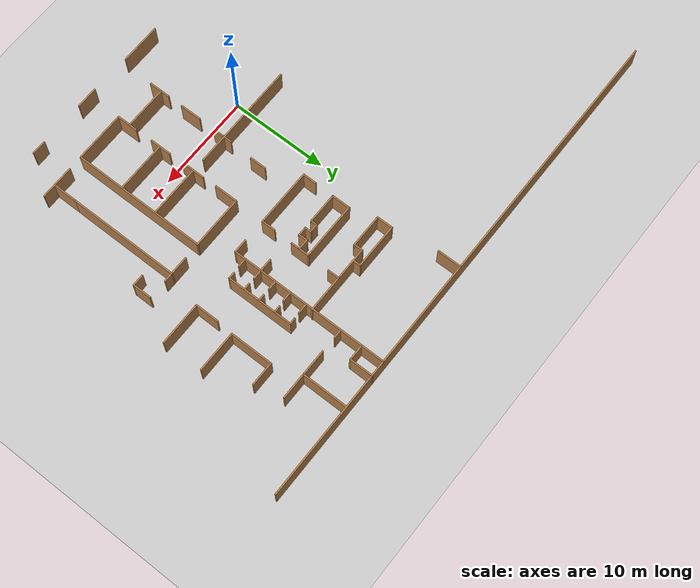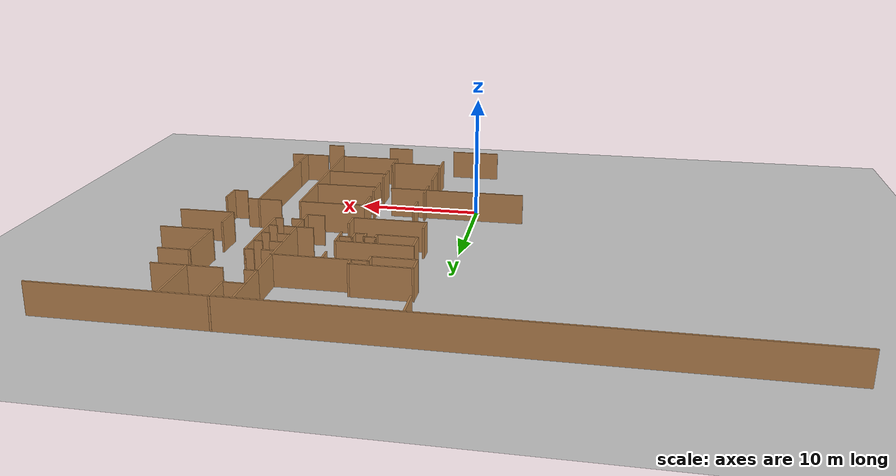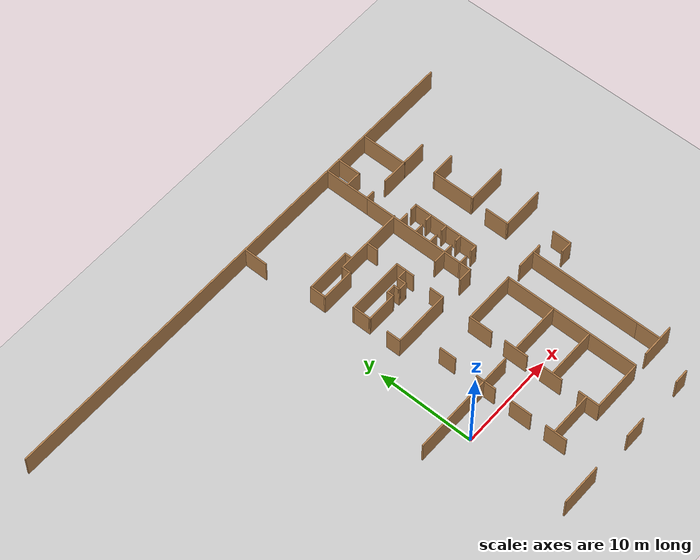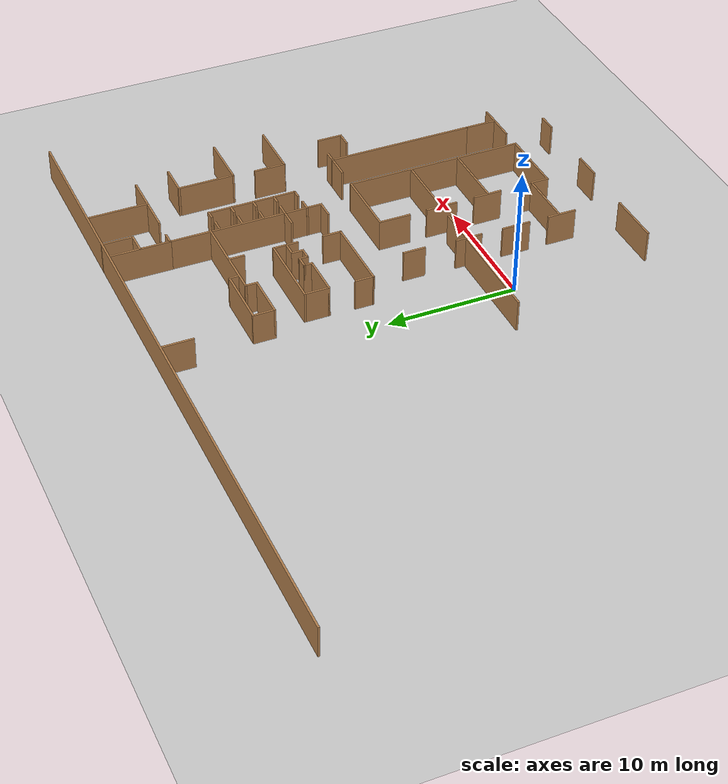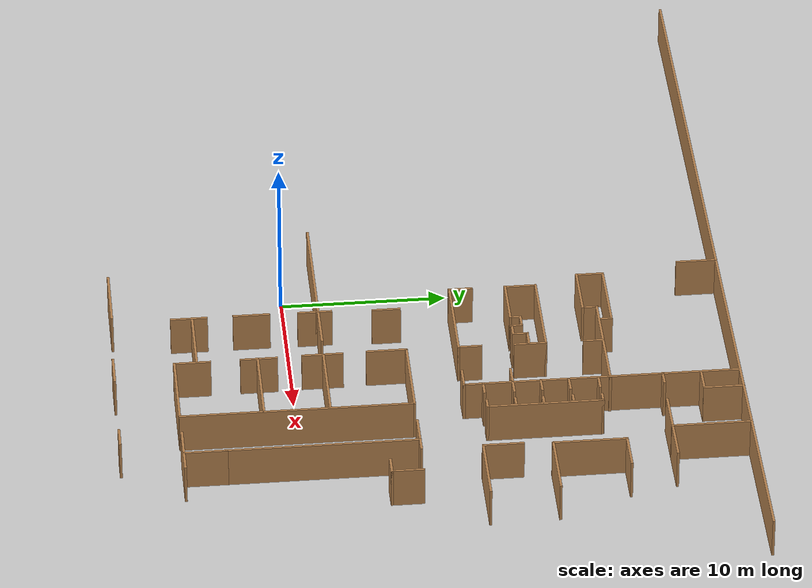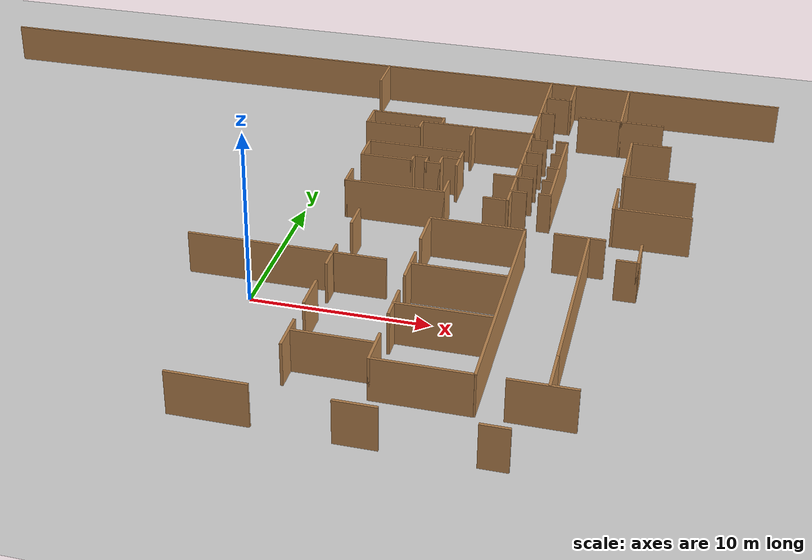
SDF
<sdf version="1.6">
 <world name="default">
  <model name="ground_plane">
   <static>1</static>
   <link name="link">
    <collision name="collision">
     <geometry><plane><normal>0 0 1</normal><size>100 100</size></plane></geometry>
     <surface><friction><ode><mu>100</mu><mu2>50</mu2></ode></friction></surface>
    </collision>
    <visual name="visual">
     <cast_shadows>0</cast_shadows>
     <geometry><plane><normal>0 0 1</normal><size>100 100</size></plane></geometry>
     <material>
      <script><uri>file://media/materials/scripts/gazebo.material</uri><name>Gazebo/Grey</name></script>
     </material>
    </visual>
   </link>
  </model>
  <model name="floor_plan">
   <link name="Wall_113">
    <collision name="Wall_113_Collision">
     <geometry><box><size>12 0.15 2.5</size></box></geometry>
     <pose>0 0 1.25 0 -0 0</pose>
    </collision>
    <visual name="Wall_113_Visual">
     <pose>0 0 1.25 0 -0 0</pose>
     <geometry><box><size>12 0.15 2.5</size></box></geometry>
     <material>
      <script><uri>file://media/materials/scripts/gazebo.material</uri><name>Gazebo/Wood</name></script>
      <ambient>1 1 1 1</ambient>
     </material>
    </visual>
    <pose>12.1534 15.9139 0 0 0 -1.5708</pose>
   </link>
   <link name="Wall_114">
    <collision name="Wall_114_Collision">
     <geometry><box><size>1.5 0.15 2.5</size></box></geometry>
     <pose>0 0 1.25 0 -0 0</pose>
    </collision>
    <visual name="Wall_114_Visual">
     <pose>0 0 1.25 0 -0 0</pose>
     <geometry><box><size>1.5 0.15 2.5</size></box></geometry>
     <material>
      <script><uri>file://media/materials/scripts/gazebo.material</uri><name>Gazebo/Wood</name></script>
      <ambient>1 1 1 1</ambient>
     </material>
    </visual>
    <pose>11.4784 9.98893 0 0 -0 3.14159</pose>
   </link>
   <link name="Wall_120">
    <collision name="Wall_120_Collision">
     <geometry><box><size>1 0.15 2.5</size></box></geometry>
     <pose>0 0 1.25 0 -0 0</pose>
    </collision>
    <visual name="Wall_120_Visual">
     <pose>0 0 1.25 0 -0 0</pose>
     <geometry><box><size>1 0.15 2.5</size></box></geometry>
     <material>
      <script><uri>file://media/materials/scripts/gazebo.material</uri><name>Gazebo/Wood</name></script>
      <ambient>1 1 1 1</ambient>
     </material>
    </visual>
    <pose>12.6925 17.9951 0 0 -0 3.14159</pose>
   </link>
   <link name="Wall_124">
    <collision name="Wall_124_Collision">
     <geometry><box><size>1 0.15 2.5</size></box></geometry>
     <pose>0 0 1.25 0 -0 0</pose>
    </collision>
    <visual name="Wall_124_Visual">
     <pose>0 0 1.25 0 -0 0</pose>
     <geometry><box><size>1 0.15 2.5</size></box></geometry>
     <material>
      <script><uri>file://media/materials/scripts/gazebo.material</uri><name>Gazebo/Wood</name></script>
      <ambient>1 1 1 1</ambient>
     </material>
    </visual>
    <pose>12.669 16.2306 0 0 -0 3.14159</pose>
   </link>
   <link name="Wall_126">
    <collision name="Wall_126_Collision">
     <geometry><box><size>1 0.15 2.5</size></box></geometry>
     <pose>0 0 1.25 0 -0 0</pose>
    </collision>
    <visual name="Wall_126_Visual">
     <pose>0 0 1.25 0 -0 0</pose>
     <geometry><box><size>1 0.15 2.5</size></box></geometry>
     <material>
      <script><uri>file://media/materials/scripts/gazebo.material</uri><name>Gazebo/Wood</name></script>
      <ambient>1 1 1 1</ambient>
     </material>
    </visual>
    <pose>12.6219 14.5602 0 0 -0 3.14159</pose>
   </link>
   <link name="Wall_128">
    <collision name="Wall_128_Collision">
     <geometry><box><size>1 0.15 2.5</size></box></geometry>
     <pose>0 0 1.25 0 -0 0</pose>
    </collision>
    <visual name="Wall_128_Visual">
     <pose>0 0 1.25 0 -0 0</pose>
     <geometry><box><size>1 0.15 2.5</size></box></geometry>
     <material>
      <script><uri>file://media/materials/scripts/gazebo.material</uri><name>Gazebo/Wood</name></script>
      <ambient>1 1 1 1</ambient>
     </material>
    </visual>
    <pose>12.6454 12.8898 0 0 -0 3.14159</pose>
   </link>
   <link name="Wall_130">
    <collision name="Wall_130_Collision">
     <geometry><box><size>1 0.15 2.5</size></box></geometry>
     <pose>0 0 1.25 0 -0 0</pose>
    </collision>
    <visual name="Wall_130_Visual">
     <pose>0 0 1.25 0 -0 0</pose>
     <geometry><box><size>1 0.15 2.5</size></box></geometry>
     <material>
      <script><uri>file://media/materials/scripts/gazebo.material</uri><name>Gazebo/Wood</name></script>
      <ambient>1 1 1 1</ambient>
     </material>
    </visual>
    <pose>12.5749 11.1253 0 0 -0 3.14159</pose>
   </link>
   <link name="Wall_132">
    <collision name="Wall_132_Collision">
     <geometry><box><size>1.5 0.15 2.5</size></box></geometry>
     <pose>0 0 1.25 0 -0 0</pose>
    </collision>
    <visual name="Wall_132_Visual">
     <pose>0 0 1.25 0 -0 0</pose>
     <geometry><box><size>1.5 0.15 2.5</size></box></geometry>
     <material>
      <script><uri>file://media/materials/scripts/gazebo.material</uri><name>Gazebo/Wood</name></script>
      <ambient>1 1 1 1</ambient>
     </material>
    </visual>
    <pose>2.5583 10.705 0 0 0 -1.5708</pose>
   </link>
   <link name="Wall_133">
    <collision name="Wall_133_Collision">
     <geometry><box><size>6 0.15 2.5</size></box></geometry>
     <pose>0 0 1.25 0 -0 0</pose>
    </collision>
    <visual name="Wall_133_Visual">
     <pose>0 0 1.25 0 -0 0</pose>
     <geometry><box><size>6 0.15 2.5</size></box></geometry>
     <material>
      <script><uri>file://media/materials/scripts/gazebo.material</uri><name>Gazebo/Wood</name></script>
      <ambient>1 1 1 1</ambient>
     </material>
    </visual>
    <pose>5.4833 10.03 0 0 -0 0</pose>
   </link>
   <link name="Wall_134">
    <collision name="Wall_134_Collision">
     <geometry><box><size>1.5 0.15 2.5</size></box></geometry>
     <pose>0 0 1.25 0 -0 0</pose>
    </collision>
    <visual name="Wall_134_Visual">
     <pose>0 0 1.25 0 -0 0</pose>
     <geometry><box><size>1.5 0.15 2.5</size></box></geometry>
     <material>
      <script><uri>file://media/materials/scripts/gazebo.material</uri><name>Gazebo/Wood</name></script>
      <ambient>1 1 1 1</ambient>
     </material>
    </visual>
    <pose>8.4083 10.705 0 0 -0 1.5708</pose>
   </link>
   <link name="Wall_142">
    <collision name="Wall_142_Collision">
     <geometry><box><size>0.75 0.15 2.5</size></box></geometry>
     <pose>0 0 1.25 0 -0 0</pose>
    </collision>
    <visual name="Wall_142_Visual">
     <pose>0 0 1.25 0 -0 0</pose>
     <geometry><box><size>0.75 0.15 2.5</size></box></geometry>
     <material>
      <script><uri>file://media/materials/scripts/gazebo.material</uri><name>Gazebo/Wood</name></script>
      <ambient>1 1 1 1</ambient>
     </material>
    </visual>
    <pose>14.1127 18.0225 0 0 -0 0</pose>
   </link>
   <link name="Wall_143">
    <collision name="Wall_143_Collision">
     <geometry><box><size>7 0.15 2.5</size></box></geometry>
     <pose>0 0 1.25 0 -0 0</pose>
    </collision>
    <visual name="Wall_143_Visual">
     <pose>0 0 1.25 0 -0 0</pose>
     <geometry><box><size>7 0.15 2.5</size></box></geometry>
     <material>
      <script><uri>file://media/materials/scripts/gazebo.material</uri><name>Gazebo/Wood</name></script>
      <ambient>1 1 1 1</ambient>
     </material>
    </visual>
    <pose>14.4127 14.5975 0 0 0 -1.5708</pose>
   </link>
   <link name="Wall_144">
    <collision name="Wall_144_Collision">
     <geometry><box><size>0.75 0.15 2.5</size></box></geometry>
     <pose>0 0 1.25 0 -0 0</pose>
    </collision>
    <visual name="Wall_144_Visual">
     <pose>0 0 1.25 0 -0 0</pose>
     <geometry><box><size>0.75 0.15 2.5</size></box></geometry>
     <material>
      <script><uri>file://media/materials/scripts/gazebo.material</uri><name>Gazebo/Wood</name></script>
      <ambient>1 1 1 1</ambient>
     </material>
    </visual>
    <pose>14.1127 11.1725 0 0 -0 3.14159</pose>
   </link>
   <link name="Wall_148">
    <collision name="Wall_148_Collision">
     <geometry><box><size>0.75 0.15 2.5</size></box></geometry>
     <pose>0 0 1.25 0 -0 0</pose>
    </collision>
    <visual name="Wall_148_Visual">
     <pose>0 0 1.25 0 -0 0</pose>
     <geometry><box><size>0.75 0.15 2.5</size></box></geometry>
     <material>
      <script><uri>file://media/materials/scripts/gazebo.material</uri><name>Gazebo/Wood</name></script>
      <ambient>1 1 1 1</ambient>
     </material>
    </visual>
    <pose>14.0607 16.2859 0 0 -0 3.14159</pose>
   </link>
   <link name="Wall_150">
    <collision name="Wall_150_Collision">
     <geometry><box><size>0.75 0.15 2.5</size></box></geometry>
     <pose>0 0 1.25 0 -0 0</pose>
    </collision>
    <visual name="Wall_150_Visual">
     <pose>0 0 1.25 0 -0 0</pose>
     <geometry><box><size>0.75 0.15 2.5</size></box></geometry>
     <material>
      <script><uri>file://media/materials/scripts/gazebo.material</uri><name>Gazebo/Wood</name></script>
      <ambient>1 1 1 1</ambient>
     </material>
    </visual>
    <pose>14.1016 14.5265 0 0 -0 3.14159</pose>
   </link>
   <link name="Wall_152">
    <collision name="Wall_152_Collision">
     <geometry><box><size>0.75 0.15 2.5</size></box></geometry>
     <pose>0 0 1.25 0 -0 0</pose>
    </collision>
    <visual name="Wall_152_Visual">
     <pose>0 0 1.25 0 -0 0</pose>
     <geometry><box><size>0.75 0.15 2.5</size></box></geometry>
     <material>
      <script><uri>file://media/materials/scripts/gazebo.material</uri><name>Gazebo/Wood</name></script>
      <ambient>1 1 1 1</ambient>
     </material>
    </visual>
    <pose>14.0607 12.8694 0 0 -0 3.14159</pose>
   </link>
   <link name="Wall_172">
    <collision name="Wall_172_Collision">
     <geometry><box><size>4.5 0.15 2.5</size></box></geometry>
     <pose>0 0 1.25 0 -0 0</pose>
    </collision>
    <visual name="Wall_172_Visual">
     <pose>0 0 1.25 0 -0 0</pose>
     <geometry><box><size>4.5 0.15 2.5</size></box></geometry>
     <material>
      <script><uri>file://media/materials/scripts/gazebo.material</uri><name>Gazebo/Wood</name></script>
      <ambient>1 1 1 1</ambient>
     </material>
    </visual>
    <pose>20.3006 10.5351 0 0 -0 3.14159</pose>
   </link>
   <link name="Wall_173">
    <collision name="Wall_173_Collision">
     <geometry><box><size>2.5 0.15 2.5</size></box></geometry>
     <pose>0 0 1.25 0 -0 0</pose>
    </collision>
    <visual name="Wall_173_Visual">
     <pose>0 0 1.25 0 -0 0</pose>
     <geometry><box><size>2.5 0.15 2.5</size></box></geometry>
     <material>
      <script><uri>file://media/materials/scripts/gazebo.material</uri><name>Gazebo/Wood</name></script>
      <ambient>1 1 1 1</ambient>
     </material>
    </visual>
    <pose>18.1256 11.7101 0 0 -0 1.5708</pose>
   </link>
   <link name="Wall_175">
    <collision name="Wall_175_Collision">
     <geometry><box><size>4.25 0.15 2.5</size></box></geometry>
     <pose>0 0 1.25 0 -0 0</pose>
    </collision>
    <visual name="Wall_175_Visual">
     <pose>0 0 1.25 0 -0 0</pose>
     <geometry><box><size>4.25 0.15 2.5</size></box></geometry>
     <material>
      <script><uri>file://media/materials/scripts/gazebo.material</uri><name>Gazebo/Wood</name></script>
      <ambient>1 1 1 1</ambient>
     </material>
    </visual>
    <pose>20.3031 14.6405 0 0 -0 3.14159</pose>
   </link>
   <link name="Wall_176">
    <collision name="Wall_176_Collision">
     <geometry><box><size>4.5 0.15 2.5</size></box></geometry>
     <pose>0 0 1.25 0 -0 0</pose>
    </collision>
    <visual name="Wall_176_Visual">
     <pose>0 0 1.25 0 -0 0</pose>
     <geometry><box><size>4.5 0.15 2.5</size></box></geometry>
     <material>
      <script><uri>file://media/materials/scripts/gazebo.material</uri><name>Gazebo/Wood</name></script>
      <ambient>1 1 1 1</ambient>
     </material>
    </visual>
    <pose>18.2532 16.8155 0 0 -0 1.5708</pose>
   </link>
   <link name="Wall_185">
    <collision name="Wall_185_Collision">
     <geometry><box><size>2.5 0.15 2.5</size></box></geometry>
     <pose>0 0 1.25 0 -0 0</pose>
    </collision>
    <visual name="Wall_185_Visual">
     <pose>0 0 1.25 0 -0 0</pose>
     <geometry><box><size>2.5 0.15 2.5</size></box></geometry>
     <material>
      <script><uri>file://media/materials/scripts/gazebo.material</uri><name>Gazebo/Wood</name></script>
      <ambient>1 1 1 1</ambient>
     </material>
    </visual>
    <pose>19.4281 18.9905 0 0 -0 0</pose>
   </link>
   <link name="Wall_359">
    <collision name="Wall_359_Collision">
     <geometry><box><size>1.5 0.15 2.5</size></box></geometry>
     <pose>0 0 1.25 0 -0 0</pose>
    </collision>
    <visual name="Wall_359_Visual">
     <pose>0 0 1.25 0 -0 0</pose>
     <geometry><box><size>1.5 0.15 2.5</size></box></geometry>
     <material>
      <script><uri>file://media/materials/scripts/gazebo.material</uri><name>Gazebo/Wood</name></script>
      <ambient>1 1 1 1</ambient>
     </material>
    </visual>
    <pose>15.3248 -10.6 0 0 -0 3.14159</pose>
   </link>
   <link name="Wall_378">
    <collision name="Wall_378_Collision">
     <geometry><box><size>2.25 0.15 2.5</size></box></geometry>
     <pose>0 0 1.25 0 -0 0</pose>
    </collision>
    <visual name="Wall_378_Visual">
     <pose>0 0 1.25 0 -0 0</pose>
     <geometry><box><size>2.25 0.15 2.5</size></box></geometry>
     <material>
      <script><uri>file://media/materials/scripts/gazebo.material</uri><name>Gazebo/Wood</name></script>
      <ambient>1 1 1 1</ambient>
     </material>
    </visual>
    <pose>8.80564 -10.5833 0 0 -0 0</pose>
   </link>
   <link name="Wall_423">
    <collision name="Wall_423_Collision">
     <geometry><box><size>1 0.15 2.5</size></box></geometry>
     <pose>0 0 1.25 0 -0 0</pose>
    </collision>
    <visual name="Wall_423_Visual">
     <pose>0 0 1.25 0 -0 0</pose>
     <geometry><box><size>1 0.15 2.5</size></box></geometry>
     <material>
      <script><uri>file://media/materials/scripts/gazebo.material</uri><name>Gazebo/Wood</name></script>
      <ambient>1 1 1 1</ambient>
     </material>
    </visual>
    <pose>17.6434 6.91331 0 0 -0 3.14159</pose>
   </link>
   <link name="Wall_424">
    <collision name="Wall_424_Collision">
     <geometry><box><size>11.5 0.15 2.5</size></box></geometry>
     <pose>0 0 1.25 0 -0 0</pose>
    </collision>
    <visual name="Wall_424_Visual">
     <pose>0 0 1.25 0 -0 0</pose>
     <geometry><box><size>11.5 0.15 2.5</size></box></geometry>
     <material>
      <script><uri>file://media/materials/scripts/gazebo.material</uri><name>Gazebo/Wood</name></script>
      <ambient>1 1 1 1</ambient>
     </material>
    </visual>
    <pose>17.2184 1.23832 0 0 0 -1.5708</pose>
   </link>
   <link name="Wall_431">
    <collision name="Wall_431_Collision">
     <geometry><box><size>2 0.15 2.5</size></box></geometry>
     <pose>0 0 1.25 0 -0 0</pose>
    </collision>
    <visual name="Wall_431_Visual">
     <pose>0 0 1.25 0 -0 0</pose>
     <geometry><box><size>2 0.15 2.5</size></box></geometry>
     <material>
      <script><uri>file://media/materials/scripts/gazebo.material</uri><name>Gazebo/Wood</name></script>
      <ambient>1 1 1 1</ambient>
     </material>
    </visual>
    <pose>20.0799 5.92446 0 0 0 -1.5708</pose>
   </link>
   <link name="Wall_437">
    <collision name="Wall_437_Collision">
     <geometry><box><size>1.25 0.15 2.5</size></box></geometry>
     <pose>0 0 1.25 0 -0 0</pose>
    </collision>
    <visual name="Wall_437_Visual">
     <pose>0 0 1.25 0 -0 0</pose>
     <geometry><box><size>1.25 0.15 2.5</size></box></geometry>
     <material>
      <script><uri>file://media/materials/scripts/gazebo.material</uri><name>Gazebo/Wood</name></script>
      <ambient>1 1 1 1</ambient>
     </material>
    </visual>
    <pose>19.5299 4.99946 0 0 -0 3.14159</pose>
   </link>
   <link name="Wall_446">
    <collision name="Wall_446_Collision">
     <geometry><box><size>2.6 0.15 2.5</size></box></geometry>
     <pose>0 0 1.25 0 -0 0</pose>
    </collision>
    <visual name="Wall_446_Visual">
     <pose>0 0 1.25 0 -0 0</pose>
     <geometry><box><size>2.6 0.15 2.5</size></box></geometry>
     <material>
      <script><uri>file://media/materials/scripts/gazebo.material</uri><name>Gazebo/Wood</name></script>
      <ambient>1 1 1 1</ambient>
     </material>
    </visual>
    <pose>17.2184 -5.66169 0 0 0 -1.5708</pose>
   </link>
   <link name="Wall_458">
    <collision name="Wall_458_Collision">
     <geometry><box><size>3.5 0.15 2.5</size></box></geometry>
     <pose>0 0 1.25 0 -0 0</pose>
    </collision>
    <visual name="Wall_458_Visual">
     <pose>0 0 1.25 0 -0 0</pose>
     <geometry><box><size>3.5 0.15 2.5</size></box></geometry>
     <material>
      <script><uri>file://media/materials/scripts/gazebo.material</uri><name>Gazebo/Wood</name></script>
      <ambient>1 1 1 1</ambient>
     </material>
    </visual>
    <pose>16.9018 -6.94346 0 0 -0 0</pose>
   </link>
   <link name="Wall_460">
    <collision name="Wall_460_Collision">
     <geometry><box><size>2 0.15 2.5</size></box></geometry>
     <pose>0 0 1.25 0 -0 0</pose>
    </collision>
    <visual name="Wall_460_Visual">
     <pose>0 0 1.25 0 -0 0</pose>
     <geometry><box><size>2 0.15 2.5</size></box></geometry>
     <material>
      <script><uri>file://media/materials/scripts/gazebo.material</uri><name>Gazebo/Wood</name></script>
      <ambient>1 1 1 1</ambient>
     </material>
    </visual>
    <pose>16.2934 6.91331 0 0 -0 3.14159</pose>
   </link>
   <link name="Wall_462">
    <collision name="Wall_462_Collision">
     <geometry><box><size>14 0.15 2.5</size></box></geometry>
     <pose>0 0 1.25 0 -0 0</pose>
    </collision>
    <visual name="Wall_462_Visual">
     <pose>0 0 1.25 0 -0 0</pose>
     <geometry><box><size>14 0.15 2.5</size></box></geometry>
     <material>
      <script><uri>file://media/materials/scripts/gazebo.material</uri><name>Gazebo/Wood</name></script>
      <ambient>1 1 1 1</ambient>
     </material>
    </visual>
    <pose>13.6943 -0.018462 0 0 -0 1.5708</pose>
   </link>
   <link name="Wall_463">
    <collision name="Wall_463_Collision">
     <geometry><box><size>5.5 0.15 2.5</size></box></geometry>
     <pose>0 0 1.25 0 -0 0</pose>
    </collision>
    <visual name="Wall_463_Visual">
     <pose>0 0 1.25 0 -0 0</pose>
     <geometry><box><size>5.5 0.15 2.5</size></box></geometry>
     <material>
      <script><uri>file://media/materials/scripts/gazebo.material</uri><name>Gazebo/Wood</name></script>
      <ambient>1 1 1 1</ambient>
     </material>
    </visual>
    <pose>11.0193 6.90654 0 0 -0 3.14159</pose>
   </link>
   <link name="Wall_464">
    <collision name="Wall_464_Collision">
     <geometry><box><size>2.5 0.15 2.5</size></box></geometry>
     <pose>0 0 1.25 0 -0 0</pose>
    </collision>
    <visual name="Wall_464_Visual">
     <pose>0 0 1.25 0 -0 0</pose>
     <geometry><box><size>2.5 0.15 2.5</size></box></geometry>
     <material>
      <script><uri>file://media/materials/scripts/gazebo.material</uri><name>Gazebo/Wood</name></script>
      <ambient>1 1 1 1</ambient>
     </material>
    </visual>
    <pose>8.34426 5.73154 0 0 0 -1.5708</pose>
   </link>
   <link name="Wall_466">
    <collision name="Wall_466_Collision">
     <geometry><box><size>2.5 0.15 2.5</size></box></geometry>
     <pose>0 0 1.25 0 -0 0</pose>
    </collision>
    <visual name="Wall_466_Visual">
     <pose>0 0 1.25 0 -0 0</pose>
     <geometry><box><size>2.5 0.15 2.5</size></box></geometry>
     <material>
      <script><uri>file://media/materials/scripts/gazebo.material</uri><name>Gazebo/Wood</name></script>
      <ambient>1 1 1 1</ambient>
     </material>
    </visual>
    <pose>8.3942 1.87502 0 0 0 -1.5708</pose>
   </link>
   <link name="Wall_468">
    <collision name="Wall_468_Collision">
     <geometry><box><size>2.25 0.15 2.5</size></box></geometry>
     <pose>0 0 1.25 0 -0 0</pose>
    </collision>
    <visual name="Wall_468_Visual">
     <pose>0 0 1.25 0 -0 0</pose>
     <geometry><box><size>2.25 0.15 2.5</size></box></geometry>
     <material>
      <script><uri>file://media/materials/scripts/gazebo.material</uri><name>Gazebo/Wood</name></script>
      <ambient>1 1 1 1</ambient>
     </material>
    </visual>
    <pose>8.45806 -1.92713 0 0 0 -1.5708</pose>
   </link>
   <link name="Wall_470">
    <collision name="Wall_470_Collision">
     <geometry><box><size>2.25 0.15 2.5</size></box></geometry>
     <pose>0 0 1.25 0 -0 0</pose>
    </collision>
    <visual name="Wall_470_Visual">
     <pose>0 0 1.25 0 -0 0</pose>
     <geometry><box><size>2.25 0.15 2.5</size></box></geometry>
     <material>
      <script><uri>file://media/materials/scripts/gazebo.material</uri><name>Gazebo/Wood</name></script>
      <ambient>1 1 1 1</ambient>
     </material>
    </visual>
    <pose>8.48999 -5.91814 0 0 0 -1.5708</pose>
   </link>
   <link name="Wall_471">
    <collision name="Wall_471_Collision">
     <geometry><box><size>5.25 0.15 2.5</size></box></geometry>
     <pose>0 0 1.25 0 -0 0</pose>
    </collision>
    <visual name="Wall_471_Visual">
     <pose>0 0 1.25 0 -0 0</pose>
     <geometry><box><size>5.25 0.15 2.5</size></box></geometry>
     <material>
      <script><uri>file://media/materials/scripts/gazebo.material</uri><name>Gazebo/Wood</name></script>
      <ambient>1 1 1 1</ambient>
     </material>
    </visual>
    <pose>11.04 -6.96814 0 0 -0 0</pose>
   </link>
   <link name="Wall_473">
    <collision name="Wall_473_Collision">
     <geometry><box><size>5.25 0.15 2.5</size></box></geometry>
     <pose>0 0 1.25 0 -0 0</pose>
    </collision>
    <visual name="Wall_473_Visual">
     <pose>0 0 1.25 0 -0 0</pose>
     <geometry><box><size>5.25 0.15 2.5</size></box></geometry>
     <material>
      <script><uri>file://media/materials/scripts/gazebo.material</uri><name>Gazebo/Wood</name></script>
      <ambient>1 1 1 1</ambient>
     </material>
    </visual>
    <pose>11.04 1.93254 0 0 -0 0</pose>
   </link>
   <link name="Wall_475">
    <collision name="Wall_475_Collision">
     <geometry><box><size>5.25 0.15 2.5</size></box></geometry>
     <pose>0 0 1.25 0 -0 0</pose>
    </collision>
    <visual name="Wall_475_Visual">
     <pose>0 0 1.25 0 -0 0</pose>
     <geometry><box><size>5.25 0.15 2.5</size></box></geometry>
     <material>
      <script><uri>file://media/materials/scripts/gazebo.material</uri><name>Gazebo/Wood</name></script>
      <ambient>1 1 1 1</ambient>
     </material>
    </visual>
    <pose>11.0719 -1.99461 0 0 -0 0</pose>
   </link>
   <link name="Wall_477">
    <collision name="Wall_477_Collision">
     <geometry><box><size>2.25 0.15 2.5</size></box></geometry>
     <pose>0 0 1.25 0 -0 0</pose>
    </collision>
    <visual name="Wall_477_Visual">
     <pose>0 0 1.25 0 -0 0</pose>
     <geometry><box><size>2.25 0.15 2.5</size></box></geometry>
     <material>
      <script><uri>file://media/materials/scripts/gazebo.material</uri><name>Gazebo/Wood</name></script>
      <ambient>1 1 1 1</ambient>
     </material>
    </visual>
    <pose>4.05199 -5.82235 0 0 0 -1.5708</pose>
   </link>
   <link name="Wall_481">
    <collision name="Wall_481_Collision">
     <geometry><box><size>2.25 0.15 2.5</size></box></geometry>
     <pose>0 0 1.25 0 -0 0</pose>
    </collision>
    <visual name="Wall_481_Visual">
     <pose>0 0 1.25 0 -0 0</pose>
     <geometry><box><size>2.25 0.15 2.5</size></box></geometry>
     <material>
      <script><uri>file://media/materials/scripts/gazebo.material</uri><name>Gazebo/Wood</name></script>
      <ambient>1 1 1 1</ambient>
     </material>
    </visual>
    <pose>4.05199 -2.06209 0 0 -0 1.5708</pose>
   </link>
   <link name="Wall_483">
    <collision name="Wall_483_Collision">
     <geometry><box><size>1.25 0.15 2.5</size></box></geometry>
     <pose>0 0 1.25 0 -0 0</pose>
    </collision>
    <visual name="Wall_483_Visual">
     <pose>0 0 1.25 0 -0 0</pose>
     <geometry><box><size>1.25 0.15 2.5</size></box></geometry>
     <material>
      <script><uri>file://media/materials/scripts/gazebo.material</uri><name>Gazebo/Wood</name></script>
      <ambient>1 1 1 1</ambient>
     </material>
    </visual>
    <pose>4.08392 1.33313 0 0 -0 1.5708</pose>
   </link>
   <link name="Wall_491">
    <collision name="Wall_491_Collision">
     <geometry><box><size>1.75 0.15 2.5</size></box></geometry>
     <pose>0 0 1.25 0 -0 0</pose>
    </collision>
    <visual name="Wall_491_Visual">
     <pose>0 0 1.25 0 -0 0</pose>
     <geometry><box><size>1.75 0.15 2.5</size></box></geometry>
     <material>
      <script><uri>file://media/materials/scripts/gazebo.material</uri><name>Gazebo/Wood</name></script>
      <ambient>1 1 1 1</ambient>
     </material>
    </visual>
    <pose>4.22841 6.05662 0 0 0 -1.5708</pose>
   </link>
   <link name="Wall_493">
    <collision name="Wall_493_Collision">
     <geometry><box><size>1 0.15 2.5</size></box></geometry>
     <pose>0 0 1.25 0 -0 0</pose>
    </collision>
    <visual name="Wall_493_Visual">
     <pose>0 0 1.25 0 -0 0</pose>
     <geometry><box><size>1 0.15 2.5</size></box></geometry>
     <material>
      <script><uri>file://media/materials/scripts/gazebo.material</uri><name>Gazebo/Wood</name></script>
      <ambient>1 1 1 1</ambient>
     </material>
    </visual>
    <pose>4.08392 2.30813 0 0 -0 1.5708</pose>
   </link>
   <link name="Wall_495">
    <collision name="Wall_495_Collision">
     <geometry><box><size>11.25 0.15 2.5</size></box></geometry>
     <pose>0 0 1.25 0 -0 0</pose>
    </collision>
    <visual name="Wall_495_Visual">
     <pose>0 0 1.25 0 -0 0</pose>
     <geometry><box><size>11.25 0.15 2.5</size></box></geometry>
     <material>
      <script><uri>file://media/materials/scripts/gazebo.material</uri><name>Gazebo/Wood</name></script>
      <ambient>1 1 1 1</ambient>
     </material>
    </visual>
    <pose>1.46033 1.96447 0 0 -0 0</pose>
   </link>
   <link name="Wall_518">
    <collision name="Wall_518_Collision">
     <geometry><box><size>4.25 0.15 2.5</size></box></geometry>
     <pose>0 0 1.25 0 -0 0</pose>
    </collision>
    <visual name="Wall_518_Visual">
     <pose>0 0 1.25 0 -0 0</pose>
     <geometry><box><size>4.25 0.15 2.5</size></box></geometry>
     <material>
      <script><uri>file://media/materials/scripts/gazebo.material</uri><name>Gazebo/Wood</name></script>
      <ambient>1 1 1 1</ambient>
     </material>
    </visual>
    <pose>1.48898 -10.4285 0 0 -0 0</pose>
   </link>
   <link name="Wall_585">
    <collision name="Wall_585_Collision">
     <geometry><box><size>4.5 0.15 2.5</size></box></geometry>
     <pose>0 0 1.25 0 -0 0</pose>
    </collision>
    <visual name="Wall_585_Visual">
     <pose>0 0 1.25 0 -0 0</pose>
     <geometry><box><size>4.5 0.15 2.5</size></box></geometry>
     <material>
      <script><uri>file://media/materials/scripts/gazebo.material</uri><name>Gazebo/Wood</name></script>
      <ambient>1 1 1 1</ambient>
     </material>
    </visual>
    <pose>6.31447 -5.6309 0 0 -0 0</pose>
   </link>
   <link name="Wall_7">
    <collision name="Wall_7_Collision">
     <geometry><box><size>53.5 0.15 2.5</size></box></geometry>
     <pose>0 0 1.25 0 -0 0</pose>
    </collision>
    <visual name="Wall_7_Visual">
     <pose>0 0 1.25 0 -0 0</pose>
     <geometry><box><size>53.5 0.15 2.5</size></box></geometry>
     <material>
      <script><uri>file://media/materials/scripts/gazebo.material</uri><name>Gazebo/Wood</name></script>
      <ambient>1 1 1 1</ambient>
     </material>
    </visual>
    <pose>0.125 26.4714 0 0 -0 0</pose>
   </link>
   <link name="Wall_75">
    <collision name="Wall_75_Collision">
     <geometry><box><size>2.5 0.15 2.5</size></box></geometry>
     <pose>0 0 1.25 0 -0 0</pose>
    </collision>
    <visual name="Wall_75_Visual">
     <pose>0 0 1.25 0 -0 0</pose>
     <geometry><box><size>2.5 0.15 2.5</size></box></geometry>
     <material>
      <script><uri>file://media/materials/scripts/gazebo.material</uri><name>Gazebo/Wood</name></script>
      <ambient>1 1 1 1</ambient>
     </material>
    </visual>
    <pose>1.00962 25.267 0 0 -0 1.5708</pose>
   </link>
   <link name="Wall_77">
    <collision name="Wall_77_Collision">
     <geometry><box><size>4.75 0.15 2.5</size></box></geometry>
     <pose>0 0 1.25 0 -0 0</pose>
    </collision>
    <visual name="Wall_77_Visual">
     <pose>0 0 1.25 0 -0 0</pose>
     <geometry><box><size>4.75 0.15 2.5</size></box></geometry>
     <material>
      <script><uri>file://media/materials/scripts/gazebo.material</uri><name>Gazebo/Wood</name></script>
      <ambient>1 1 1 1</ambient>
     </material>
    </visual>
    <pose>12.1534 24.1389 0 0 0 -1.5708</pose>
   </link>
   <link name="Wall_78">
    <collision name="Wall_78_Collision">
     <geometry><box><size>1 0.15 2.5</size></box></geometry>
     <pose>0 0 1.25 0 -0 0</pose>
    </collision>
    <visual name="Wall_78_Visual">
     <pose>0 0 1.25 0 -0 0</pose>
     <geometry><box><size>1 0.15 2.5</size></box></geometry>
     <material>
      <script><uri>file://media/materials/scripts/gazebo.material</uri><name>Gazebo/Wood</name></script>
      <ambient>1 1 1 1</ambient>
     </material>
    </visual>
    <pose>12.5784 21.8389 0 0 -0 0</pose>
   </link>
   <link name="Wall_80">
    <collision name="Wall_80_Collision">
     <geometry><box><size>2.75 0.15 2.5</size></box></geometry>
     <pose>0 0 1.25 0 -0 0</pose>
    </collision>
    <visual name="Wall_80_Visual">
     <pose>0 0 1.25 0 -0 0</pose>
     <geometry><box><size>2.75 0.15 2.5</size></box></geometry>
     <material>
      <script><uri>file://media/materials/scripts/gazebo.material</uri><name>Gazebo/Wood</name></script>
      <ambient>1 1 1 1</ambient>
     </material>
    </visual>
    <pose>15.9794 21.797 0 0 -0 0</pose>
   </link>
   <link name="Wall_81">
    <collision name="Wall_81_Collision">
     <geometry><box><size>4.75 0.15 2.5</size></box></geometry>
     <pose>0 0 1.25 0 -0 0</pose>
    </collision>
    <visual name="Wall_81_Visual">
     <pose>0 0 1.25 0 -0 0</pose>
     <geometry><box><size>4.75 0.15 2.5</size></box></geometry>
     <material>
      <script><uri>file://media/materials/scripts/gazebo.material</uri><name>Gazebo/Wood</name></script>
      <ambient>1 1 1 1</ambient>
     </material>
    </visual>
    <pose>17.2794 24.097 0 0 -0 1.5708</pose>
   </link>
   <link name="Wall_811">
    <collision name="Wall_811_Collision">
     <geometry><box><size>7.25 0.15 2.5</size></box></geometry>
     <pose>0 0 1.25 0 -0 0</pose>
    </collision>
    <visual name="Wall_811_Visual">
     <pose>0 0 1.25 0 -0 0</pose>
     <geometry><box><size>7.25 0.15 2.5</size></box></geometry>
     <material>
      <script><uri>file://media/materials/scripts/gazebo.material</uri><name>Gazebo/Wood</name></script>
      <ambient>1 1 1 1</ambient>
     </material>
    </visual>
    <pose>8.67348 18.7009 0 0 -0 3.14159</pose>
   </link>
   <link name="Wall_812">
    <collision name="Wall_812_Collision">
     <geometry><box><size>1 0.15 2.5</size></box></geometry>
     <pose>0 0 1.25 0 -0 0</pose>
    </collision>
    <visual name="Wall_812_Visual">
     <pose>0 0 1.25 0 -0 0</pose>
     <geometry><box><size>1 0.15 2.5</size></box></geometry>
     <material>
      <script><uri>file://media/materials/scripts/gazebo.material</uri><name>Gazebo/Wood</name></script>
      <ambient>1 1 1 1</ambient>
     </material>
    </visual>
    <pose>5.12348 18.276 0 0 0 -1.5708</pose>
   </link>
   <link name="Wall_813">
    <collision name="Wall_813_Collision">
     <geometry><box><size>3.5 0.15 2.5</size></box></geometry>
     <pose>0 0 1.25 0 -0 0</pose>
    </collision>
    <visual name="Wall_813_Visual">
     <pose>0 0 1.25 0 -0 0</pose>
     <geometry><box><size>3.5 0.15 2.5</size></box></geometry>
     <material>
      <script><uri>file://media/materials/scripts/gazebo.material</uri><name>Gazebo/Wood</name></script>
      <ambient>1 1 1 1</ambient>
     </material>
    </visual>
    <pose>3.44848 17.8509 0 0 -0 3.14159</pose>
   </link>
   <link name="Wall_814">
    <collision name="Wall_814_Collision">
     <geometry><box><size>1.75 0.15 2.5</size></box></geometry>
     <pose>0 0 1.25 0 -0 0</pose>
    </collision>
    <visual name="Wall_814_Visual">
     <pose>0 0 1.25 0 -0 0</pose>
     <geometry><box><size>1.75 0.15 2.5</size></box></geometry>
     <material>
      <script><uri>file://media/materials/scripts/gazebo.material</uri><name>Gazebo/Wood</name></script>
      <ambient>1 1 1 1</ambient>
     </material>
    </visual>
    <pose>1.77348 18.651 0 0 -0 1.5708</pose>
   </link>
   <link name="Wall_815">
    <collision name="Wall_815_Collision">
     <geometry><box><size>4.75 0.15 2.5</size></box></geometry>
     <pose>0 0 1.25 0 -0 0</pose>
    </collision>
    <visual name="Wall_815_Visual">
     <pose>0 0 1.25 0 -0 0</pose>
     <geometry><box><size>4.75 0.15 2.5</size></box></geometry>
     <material>
      <script><uri>file://media/materials/scripts/gazebo.material</uri><name>Gazebo/Wood</name></script>
      <ambient>1 1 1 1</ambient>
     </material>
    </visual>
    <pose>4.07348 19.4509 0 0 -0 0</pose>
   </link>
   <link name="Wall_816">
    <collision name="Wall_816_Collision">
     <geometry><box><size>0.75 0.15 2.5</size></box></geometry>
     <pose>0 0 1.25 0 -0 0</pose>
    </collision>
    <visual name="Wall_816_Visual">
     <pose>0 0 1.25 0 -0 0</pose>
     <geometry><box><size>0.75 0.15 2.5</size></box></geometry>
     <material>
      <script><uri>file://media/materials/scripts/gazebo.material</uri><name>Gazebo/Wood</name></script>
      <ambient>1 1 1 1</ambient>
     </material>
    </visual>
    <pose>6.37348 19.151 0 0 0 -1.5708</pose>
   </link>
   <link name="Wall_818">
    <collision name="Wall_818_Collision">
     <geometry><box><size>1.25 0.15 2.5</size></box></geometry>
     <pose>0 0 1.25 0 -0 0</pose>
    </collision>
    <visual name="Wall_818_Visual">
     <pose>0 0 1.25 0 -0 0</pose>
     <geometry><box><size>1.25 0.15 2.5</size></box></geometry>
     <material>
      <script><uri>file://media/materials/scripts/gazebo.material</uri><name>Gazebo/Wood</name></script>
      <ambient>1 1 1 1</ambient>
     </material>
    </visual>
    <pose>8.48356 18.1147 0 0 0 -1.5708</pose>
   </link>
   <link name="Wall_820">
    <collision name="Wall_820_Collision">
     <geometry><box><size>1.5 0.15 2.5</size></box></geometry>
     <pose>0 0 1.25 0 -0 0</pose>
    </collision>
    <visual name="Wall_820_Visual">
     <pose>0 0 1.25 0 -0 0</pose>
     <geometry><box><size>1.5 0.15 2.5</size></box></geometry>
     <material>
      <script><uri>file://media/materials/scripts/gazebo.material</uri><name>Gazebo/Wood</name></script>
      <ambient>1 1 1 1</ambient>
     </material>
    </visual>
    <pose>11.5454 12.8898 0 0 -0 3.14159</pose>
   </link>
   <link name="Wall_822">
    <collision name="Wall_822_Collision">
     <geometry><box><size>2 0.15 2.5</size></box></geometry>
     <pose>0 0 1.25 0 -0 0</pose>
    </collision>
    <visual name="Wall_822_Visual">
     <pose>0 0 1.25 0 -0 0</pose>
     <geometry><box><size>2 0.15 2.5</size></box></geometry>
     <material>
      <script><uri>file://media/materials/scripts/gazebo.material</uri><name>Gazebo/Wood</name></script>
      <ambient>1 1 1 1</ambient>
     </material>
    </visual>
    <pose>8.45217 14.3405 0 0 -0 1.5708</pose>
   </link>
   <link name="Wall_823">
    <collision name="Wall_823_Collision">
     <geometry><box><size>6 0.15 2.5</size></box></geometry>
     <pose>0 0 1.25 0 -0 0</pose>
    </collision>
    <visual name="Wall_823_Visual">
     <pose>0 0 1.25 0 -0 0</pose>
     <geometry><box><size>6 0.15 2.5</size></box></geometry>
     <material>
      <script><uri>file://media/materials/scripts/gazebo.material</uri><name>Gazebo/Wood</name></script>
      <ambient>1 1 1 1</ambient>
     </material>
    </visual>
    <pose>5.52717 15.2655 0 0 -0 3.14159</pose>
   </link>
   <link name="Wall_824">
    <collision name="Wall_824_Collision">
     <geometry><box><size>2 0.15 2.5</size></box></geometry>
     <pose>0 0 1.25 0 -0 0</pose>
    </collision>
    <visual name="Wall_824_Visual">
     <pose>0 0 1.25 0 -0 0</pose>
     <geometry><box><size>2 0.15 2.5</size></box></geometry>
     <material>
      <script><uri>file://media/materials/scripts/gazebo.material</uri><name>Gazebo/Wood</name></script>
      <ambient>1 1 1 1</ambient>
     </material>
    </visual>
    <pose>2.60217 14.3405 0 0 0 -1.5708</pose>
   </link>
   <link name="Wall_825">
    <collision name="Wall_825_Collision">
     <geometry><box><size>3.25 0.15 2.5</size></box></geometry>
     <pose>0 0 1.25 0 -0 0</pose>
    </collision>
    <visual name="Wall_825_Visual">
     <pose>0 0 1.25 0 -0 0</pose>
     <geometry><box><size>3.25 0.15 2.5</size></box></geometry>
     <material>
      <script><uri>file://media/materials/scripts/gazebo.material</uri><name>Gazebo/Wood</name></script>
      <ambient>1 1 1 1</ambient>
     </material>
    </visual>
    <pose>4.15217 13.4155 0 0 -0 0</pose>
   </link>
   <link name="Wall_826">
    <collision name="Wall_826_Collision">
     <geometry><box><size>0.75 0.15 2.5</size></box></geometry>
     <pose>0 0 1.25 0 -0 0</pose>
    </collision>
    <visual name="Wall_826_Visual">
     <pose>0 0 1.25 0 -0 0</pose>
     <geometry><box><size>0.75 0.15 2.5</size></box></geometry>
     <material>
      <script><uri>file://media/materials/scripts/gazebo.material</uri><name>Gazebo/Wood</name></script>
      <ambient>1 1 1 1</ambient>
     </material>
    </visual>
    <pose>5.70217 13.7155 0 0 -0 1.5708</pose>
   </link>
   <link name="Wall_827">
    <collision name="Wall_827_Collision">
     <geometry><box><size>1 0.15 2.5</size></box></geometry>
     <pose>0 0 1.25 0 -0 0</pose>
    </collision>
    <visual name="Wall_827_Visual">
     <pose>0 0 1.25 0 -0 0</pose>
     <geometry><box><size>1 0.15 2.5</size></box></geometry>
     <material>
      <script><uri>file://media/materials/scripts/gazebo.material</uri><name>Gazebo/Wood</name></script>
      <ambient>1 1 1 1</ambient>
     </material>
    </visual>
    <pose>6.12717 14.0155 0 0 -0 0</pose>
   </link>
   <link name="Wall_828">
    <collision name="Wall_828_Collision">
     <geometry><box><size>0.75 0.15 2.5</size></box></geometry>
     <pose>0 0 1.25 0 -0 0</pose>
    </collision>
    <visual name="Wall_828_Visual">
     <pose>0 0 1.25 0 -0 0</pose>
     <geometry><box><size>0.75 0.15 2.5</size></box></geometry>
     <material>
      <script><uri>file://media/materials/scripts/gazebo.material</uri><name>Gazebo/Wood</name></script>
      <ambient>1 1 1 1</ambient>
     </material>
    </visual>
    <pose>6.55217 13.7155 0 0 0 -1.5708</pose>
   </link>
   <link name="Wall_829">
    <collision name="Wall_829_Collision">
     <geometry><box><size>1 0.15 2.5</size></box></geometry>
     <pose>0 0 1.25 0 -0 0</pose>
    </collision>
    <visual name="Wall_829_Visual">
     <pose>0 0 1.25 0 -0 0</pose>
     <geometry><box><size>1 0.15 2.5</size></box></geometry>
     <material>
      <script><uri>file://media/materials/scripts/gazebo.material</uri><name>Gazebo/Wood</name></script>
      <ambient>1 1 1 1</ambient>
     </material>
    </visual>
    <pose>6.97717 13.4155 0 0 -0 0</pose>
   </link>
   <link name="Wall_83">
    <collision name="Wall_83_Collision">
     <geometry><box><size>2.5 0.15 2.5</size></box></geometry>
     <pose>0 0 1.25 0 -0 0</pose>
    </collision>
    <visual name="Wall_83_Visual">
     <pose>0 0 1.25 0 -0 0</pose>
     <geometry><box><size>2.5 0.15 2.5</size></box></geometry>
     <material>
      <script><uri>file://media/materials/scripts/gazebo.material</uri><name>Gazebo/Wood</name></script>
      <ambient>1 1 1 1</ambient>
     </material>
    </visual>
    <pose>13.7537 25.3036 0 0 0 -1.5708</pose>
   </link>
   <link name="Wall_830">
    <collision name="Wall_830_Collision">
     <geometry><box><size>1 0.15 2.5</size></box></geometry>
     <pose>0 0 1.25 0 -0 0</pose>
    </collision>
    <visual name="Wall_830_Visual">
     <pose>0 0 1.25 0 -0 0</pose>
     <geometry><box><size>1 0.15 2.5</size></box></geometry>
     <material>
      <script><uri>file://media/materials/scripts/gazebo.material</uri><name>Gazebo/Wood</name></script>
      <ambient>1 1 1 1</ambient>
     </material>
    </visual>
    <pose>7.40217 13.8405 0 0 -0 1.5708</pose>
   </link>
   <link name="Wall_831">
    <collision name="Wall_831_Collision">
     <geometry><box><size>1.15 0.15 2.5</size></box></geometry>
     <pose>0 0 1.25 0 -0 0</pose>
    </collision>
    <visual name="Wall_831_Visual">
     <pose>0 0 1.25 0 -0 0</pose>
     <geometry><box><size>1.15 0.15 2.5</size></box></geometry>
     <material>
      <script><uri>file://media/materials/scripts/gazebo.material</uri><name>Gazebo/Wood</name></script>
      <ambient>1 1 1 1</ambient>
     </material>
    </visual>
    <pose>7.90217 14.2655 0 0 -0 0</pose>
   </link>
   <link name="Wall_84">
    <collision name="Wall_84_Collision">
     <geometry><box><size>1.75 0.15 2.5</size></box></geometry>
     <pose>0 0 1.25 0 -0 0</pose>
    </collision>
    <visual name="Wall_84_Visual">
     <pose>0 0 1.25 0 -0 0</pose>
     <geometry><box><size>1.75 0.15 2.5</size></box></geometry>
     <material>
      <script><uri>file://media/materials/scripts/gazebo.material</uri><name>Gazebo/Wood</name></script>
      <ambient>1 1 1 1</ambient>
     </material>
    </visual>
    <pose>12.9537 24.1286 0 0 -0 3.14159</pose>
   </link>
   <link name="Wall_86">
    <collision name="Wall_86_Collision">
     <geometry><box><size>2.75 0.15 2.5</size></box></geometry>
     <pose>0 0 1.25 0 -0 0</pose>
    </collision>
    <visual name="Wall_86_Visual">
     <pose>0 0 1.25 0 -0 0</pose>
     <geometry><box><size>2.75 0.15 2.5</size></box></geometry>
     <material>
      <script><uri>file://media/materials/scripts/gazebo.material</uri><name>Gazebo/Wood</name></script>
      <ambient>1 1 1 1</ambient>
     </material>
    </visual>
    <pose>18.5794 21.797 0 0 -0 0</pose>
   </link>
   <static>1</static>
  </model>
 </world>
</sdf>
